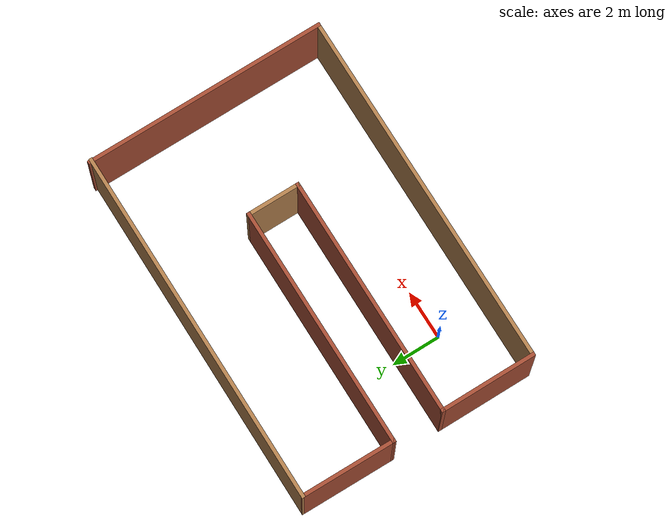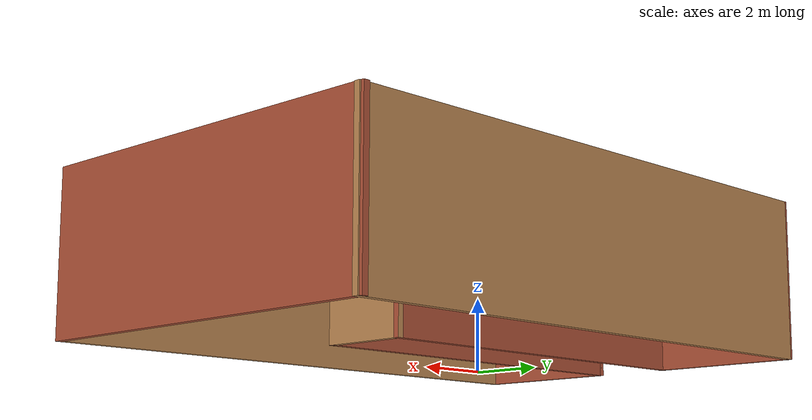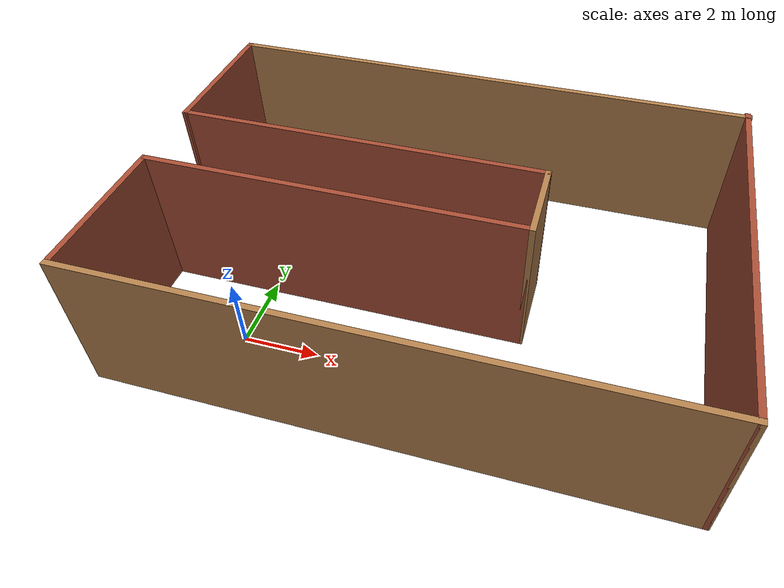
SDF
<?xml version='1.0'?>
<sdf version='1.6'>
  <model name='task13'>
    <pose frame=''>4.37071 2.92 0 0 -0 0</pose>
    <link name='Wall_10'>
      <collision name='Wall_10_Collision'>
        <geometry>
          <box>
            <size>3.9699 0.15 4</size>
          </box>
        </geometry>
        <pose frame=''>0 0 2 0 -0 0</pose>
      </collision>
      <visual name='Wall_10_Visual'>
        <pose frame=''>0 0 2 0 -0 0</pose>
        <geometry>
          <box>
            <size>3.9699 0.15 4</size>
          </box>
        </geometry>
        <material>
          <script>
            <uri>file://media/materials/scripts/gazebo.material</uri>
            <name>Gazebo/Bricks</name>
          </script>
          <ambient>1 1 1 1</ambient>
        </material>
        <meta>
          <layer>0</layer>
        </meta>
      </visual>
      <pose frame=''>-7.29971 2.935 0 0 -0 1.56294</pose>
    </link>
    <link name='Wall_12'>
      <collision name='Wall_12_Collision'>
        <geometry>
          <box>
            <size>14.75 0.15 4</size>
          </box>
        </geometry>
        <pose frame=''>0 0 2 0 -0 0</pose>
      </collision>
      <visual name='Wall_12_Visual'>
        <pose frame=''>0 0 2 0 -0 0</pose>
        <geometry>
          <box>
            <size>14.75 0.15 4</size>
          </box>
        </geometry>
        <material>
          <script>
            <uri>file://media/materials/scripts/gazebo.material</uri>
            <name>Gazebo/Wood</name>
          </script>
          <ambient>1 1 1 1</ambient>
        </material>
        <meta>
          <layer>0</layer>
        </meta>
      </visual>
      <pose frame=''>0.015293 4.845 0 0 -0 0</pose>
    </link>
    <link name='Wall_14'>
      <collision name='Wall_14_Collision'>
        <geometry>
          <box>
            <size>10 0.15 4</size>
          </box>
        </geometry>
        <pose frame=''>0 0 2 0 -0 0</pose>
      </collision>
      <visual name='Wall_14_Visual'>
        <pose frame=''>0 0 2 0 -0 0</pose>
        <geometry>
          <box>
            <size>10 0.15 4</size>
          </box>
        </geometry>
        <material>
          <script>
            <uri>file://media/materials/scripts/gazebo.material</uri>
            <name>Gazebo/Bricks</name>
          </script>
          <ambient>1 1 1 1</ambient>
        </material>
        <meta>
          <layer>0</layer>
        </meta>
      </visual>
      <pose frame=''>7.28529 0 0 0 -0 1.5708</pose>
    </link>
    <link name='Wall_3'>
      <collision name='Wall_3_Collision'>
        <geometry>
          <box>
            <size>4 0.15 4</size>
          </box>
        </geometry>
        <pose frame=''>0 0 2 0 -0 0</pose>
      </collision>
      <visual name='Wall_3_Visual'>
        <pose frame=''>0 0 2 0 -0 0</pose>
        <geometry>
          <box>
            <size>4 0.15 4</size>
          </box>
        </geometry>
        <material>
          <script>
            <uri>file://media/materials/scripts/gazebo.material</uri>
            <name>Gazebo/Bricks</name>
          </script>
          <ambient>1 1 1 1</ambient>
        </material>
        <meta>
          <layer>0</layer>
        </meta>
      </visual>
      <pose frame=''>-7.31471 -3 0 0 -0 -1.5708</pose>
    </link>
    <link name='Wall_4'>
      <collision name='Wall_4_Collision'>
        <geometry>
          <box>
            <size>14.75 0.15 4</size>
          </box>
        </geometry>
        <pose frame=''>0 0 2 0 -0 0</pose>
      </collision>
      <visual name='Wall_4_Visual'>
        <pose frame=''>0 0 2 0 -0 0</pose>
        <geometry>
          <box>
            <size>14.75 0.15 4</size>
          </box>
        </geometry>
        <material>
          <script>
            <uri>file://media/materials/scripts/gazebo.material</uri>
            <name>Gazebo/Wood</name>
          </script>
          <ambient>1 1 1 1</ambient>
        </material>
        <meta>
          <layer>0</layer>
        </meta>
      </visual>
      <pose frame=''>-0.014707 -4.925 0 0 -0 0</pose>
    </link>
    <link name='Wall_7'>
      <collision name='Wall_7_Collision'>
        <geometry>
          <box>
            <size>10 0.15 4</size>
          </box>
        </geometry>
        <pose frame=''>0 0 2 0 -0 0</pose>
      </collision>
      <visual name='Wall_7_Visual'>
        <pose frame=''>0 0 2 0 -0 0</pose>
        <geometry>
          <box>
            <size>10 0.15 4</size>
          </box>
        </geometry>
        <material>
          <script>
            <uri>file://media/materials/scripts/gazebo.material</uri>
            <name>Gazebo/Bricks</name>
          </script>
          <ambient>1 1 1 1</ambient>
        </material>
        <meta>
          <layer>0</layer>
        </meta>
      </visual>
      <pose frame=''>-2.38971 -1.075 0 0 -0 0</pose>
    </link>
    <link name='Wall_8'>
      <collision name='Wall_8_Collision'>
        <geometry>
          <box>
            <size>2.25 0.15 4</size>
          </box>
        </geometry>
        <pose frame=''>0 0 2 0 -0 0</pose>
      </collision>
      <visual name='Wall_8_Visual'>
        <pose frame=''>0 0 2 0 -0 0</pose>
        <geometry>
          <box>
            <size>2.25 0.15 4</size>
          </box>
        </geometry>
        <material>
          <script>
            <uri>file://media/materials/scripts/gazebo.material</uri>
            <name>Gazebo/Wood</name>
          </script>
          <ambient>1 1 1 1</ambient>
        </material>
        <meta>
          <layer>0</layer>
        </meta>
      </visual>
      <pose frame=''>2.53529 -0.025 0 0 -0 1.5708</pose>
    </link>
    <link name='Wall_9'>
      <collision name='Wall_9_Collision'>
        <geometry>
          <box>
            <size>10 0.15 4</size>
          </box>
        </geometry>
        <pose frame=''>0 0 2 0 -0 0</pose>
      </collision>
      <visual name='Wall_9_Visual'>
        <pose frame=''>0 0 2 0 -0 0</pose>
        <geometry>
          <box>
            <size>10 0.15 4</size>
          </box>
        </geometry>
        <material>
          <script>
            <uri>file://media/materials/scripts/gazebo.material</uri>
            <name>Gazebo/Bricks</name>
          </script>
          <ambient>1 1 1 1</ambient>
        </material>
        <meta>
          <layer>0</layer>
        </meta>
      </visual>
      <pose frame=''>-2.38971 1.025 0 0 -0 3.14159</pose>
    </link>
    <static>1</static>
  </model>
</sdf>
